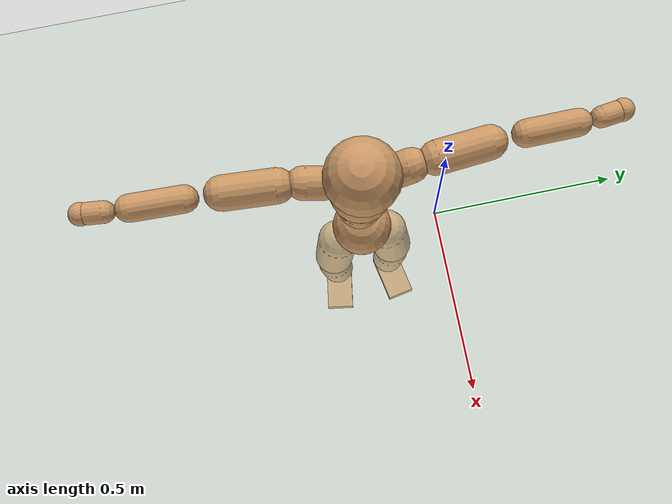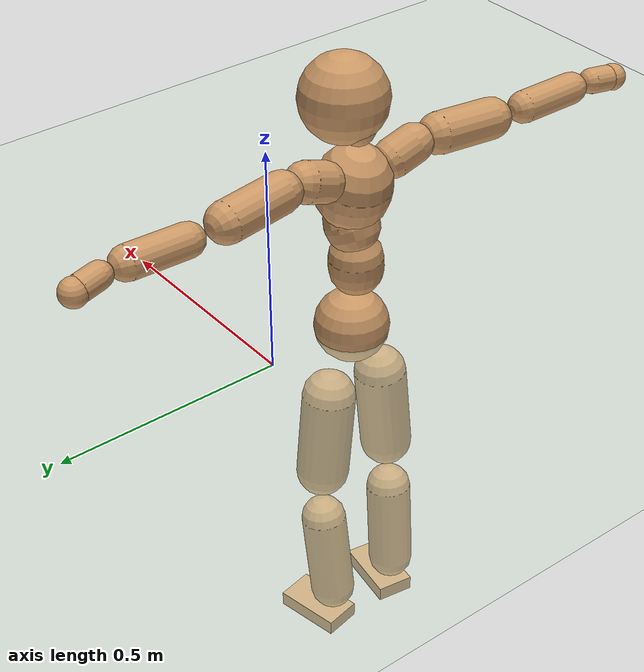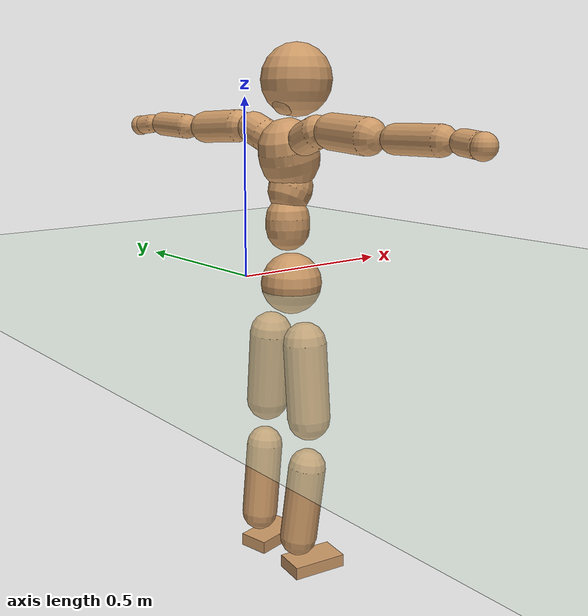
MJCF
<mujoco model="humanoid">
  <compiler coordinate="local"/>
  <default>
    <joint damping="0.0" armature="0.01" stiffness="0.0" limited="true"/>
    <geom conaffinity="1" condim="3" contype="7" margin="0.001" rgba="0.8 0.6 .4 1"/>
  </default>
  <asset>
    <texture type="skybox" builtin="gradient" rgb1=".4 .5 .6" rgb2="0 0 0" width="100" height="100"/>
    <texture builtin="flat" height="1278" mark="cross" markrgb="1 1 1" name="texgeom" random="0.01" rgb1="0.8 0.6 0.4" rgb2="0.8 0.6 0.4" type="cube" width="127"/>
    <texture builtin="checker" height="100" name="texplane" rgb1="0 0 0" rgb2="0.8 0.8 0.8" type="2d" width="100"/>
    <material name="MatPlane" reflectance="0.5" shininess="1" specular="1" texrepeat="60 60" texture="texplane"/>
    <material name="geom" texture="texgeom" texuniform="true"/>
  </asset>
  <worldbody>
    <light cutoff="100" diffuse="1 1 1" dir="-0 0 -1.3" directional="true" exponent="1" pos="0 0 1.3" specular=".1 .1 .1"/>
    <geom conaffinity="1" condim="3" name="floor" pos="0 0 0" rgba="0.8 0.9 0.8 1" size="100 100 .2" type="plane" material="MatPlane"/>
    <body name="Pelvis" pos="-0.0017 -0.2062 0.0162">
      <freejoint name="Pelvis"/>
      <geom type="sphere" contype="1" conaffinity="1" density="500" size="0.0818" pos="0.0000 0.0000 0.0000" name="Pelvis"/>
      <body name="L_Hip" pos="-0.0136 0.0661 -0.0835">
        <joint name="L_Hip_x" type="hinge" pos="0 0 0" axis="1 0 0" stiffness="800" damping="80" armature="0.02" range="-180.0000 180.0000"/>
        <joint name="L_Hip_y" type="hinge" pos="0 0 0" axis="0 1 0" stiffness="800" damping="80" armature="0.02" range="-180.0000 180.0000"/>
        <joint name="L_Hip_z" type="hinge" pos="0 0 0" axis="0 0 1" stiffness="800" damping="80" armature="0.02" range="-180.0000 180.0000"/>
        <geom type="capsule" contype="1" conaffinity="1" density="500" fromto="0.0005 0.0061 -0.0670 0.0021 0.0243 -0.2681" size="0.0584" name="L_Hip"/>
        <body name="L_Knee" pos="0.0026 0.0304 -0.3351">
          <joint name="L_Knee_x" type="hinge" pos="0 0 0" axis="1 0 0" stiffness="800" damping="80" armature="0.02" range="-180.0000 180.0000"/>
          <joint name="L_Knee_y" type="hinge" pos="0 0 0" axis="0 1 0" stiffness="800" damping="80" armature="0.02" range="-180.0000 180.0000"/>
          <joint name="L_Knee_z" type="hinge" pos="0 0 0" axis="0 0 1" stiffness="800" damping="80" armature="0.02" range="-180.0000 180.0000"/>
          <geom type="capsule" contype="1" conaffinity="1" density="500" fromto="-0.0078 -0.0021 -0.0682 -0.0313 -0.0085 -0.2727" size="0.0504" name="L_Knee"/>
          <body name="L_Ankle" pos="-0.0391 -0.0107 -0.3408">
            <joint name="L_Ankle_x" type="hinge" pos="0 0 0" axis="1 0 0" stiffness="800" damping="80" armature="0.02" range="-180.0000 180.0000"/>
            <joint name="L_Ankle_y" type="hinge" pos="0 0 0" axis="0 1 0" stiffness="800" damping="80" armature="0.02" range="-180.0000 180.0000"/>
            <joint name="L_Ankle_z" type="hinge" pos="0 0 0" axis="0 0 1" stiffness="800" damping="80" armature="0.02" range="-180.0000 180.0000"/>
            <geom type="box" contype="1" conaffinity="1" density="500" pos="0.0532 0.0104 -0.0240" size="0.0765 0.0422 0.0177" quat="0.9953 0.0000 0.0000 0.0968" name="L_Ankle"/>
            <body name="L_Toe" pos="0.1064 0.0209 -0.0481">
              <joint name="L_Toe_x" type="hinge" pos="0 0 0" axis="1 0 0" stiffness="500" damping="50" armature="0.02" range="-180.0000 180.0000"/>
              <joint name="L_Toe_y" type="hinge" pos="0 0 0" axis="0 1 0" stiffness="500" damping="50" armature="0.02" range="-180.0000 180.0000"/>
              <joint name="L_Toe_z" type="hinge" pos="0 0 0" axis="0 0 1" stiffness="500" damping="50" armature="0.02" range="-180.0000 180.0000"/>
              <geom type="box" contype="1" conaffinity="1" density="500" pos="0.0000 0.0000 0.0244" size="0.0008 0.0021 0.0009" quat="0.9946 0.0000 0.0000 0.1039" name="L_Toe"/>
            </body>
          </body>
        </body>
      </body>
      <body name="R_Hip" pos="-0.0111 -0.0642 -0.0817">
        <joint name="R_Hip_x" type="hinge" pos="0 0 0" axis="1 0 0" stiffness="800" damping="80" armature="0.02" range="-180.0000 180.0000"/>
        <joint name="R_Hip_y" type="hinge" pos="0 0 0" axis="0 1 0" stiffness="800" damping="80" armature="0.02" range="-180.0000 180.0000"/>
        <joint name="R_Hip_z" type="hinge" pos="0 0 0" axis="0 0 1" stiffness="800" damping="80" armature="0.02" range="-180.0000 180.0000"/>
        <geom type="capsule" contype="1" conaffinity="1" density="500" fromto="-0.0002 -0.0068 -0.0687 -0.0007 -0.0270 -0.2749" size="0.0578" name="R_Hip"/>
        <body name="R_Knee" pos="-0.0009 -0.0338 -0.3437">
          <joint name="R_Knee_x" type="hinge" pos="0 0 0" axis="1 0 0" stiffness="800" damping="80" armature="0.02" range="-180.0000 180.0000"/>
          <joint name="R_Knee_y" type="hinge" pos="0 0 0" axis="0 1 0" stiffness="800" damping="80" armature="0.02" range="-180.0000 180.0000"/>
          <joint name="R_Knee_z" type="hinge" pos="0 0 0" axis="0 0 1" stiffness="800" damping="80" armature="0.02" range="-180.0000 180.0000"/>
          <geom type="capsule" contype="1" conaffinity="1" density="500" fromto="-0.0075 0.0026 -0.0681 -0.0299 0.0105 -0.2723" size="0.0507" name="R_Knee"/>
          <body name="R_Ankle" pos="-0.0373 0.0131 -0.3403">
            <joint name="R_Ankle_x" type="hinge" pos="0 0 0" axis="1 0 0" stiffness="800" damping="80" armature="0.02" range="-180.0000 180.0000"/>
            <joint name="R_Ankle_y" type="hinge" pos="0 0 0" axis="0 1 0" stiffness="800" damping="80" armature="0.02" range="-180.0000 180.0000"/>
            <joint name="R_Ankle_z" type="hinge" pos="0 0 0" axis="0 0 1" stiffness="800" damping="80" armature="0.02" range="-180.0000 180.0000"/>
            <geom type="box" contype="1" conaffinity="1" density="500" pos="0.0545 -0.0084 -0.0207" size="0.0766 0.0425 0.0175" quat="0.9971 0.0000 0.0000 -0.0762" name="R_Ankle"/>
            <body name="R_Toe" pos="0.109 -0.0168 -0.0414">
              <joint name="R_Toe_x" type="hinge" pos="0 0 0" axis="1 0 0" stiffness="500" damping="50" armature="0.02" range="-180.0000 180.0000"/>
              <joint name="R_Toe_y" type="hinge" pos="0 0 0" axis="0 1 0" stiffness="500" damping="50" armature="0.02" range="-180.0000 180.0000"/>
              <joint name="R_Toe_z" type="hinge" pos="0 0 0" axis="0 0 1" stiffness="500" damping="50" armature="0.02" range="-180.0000 180.0000"/>
              <geom type="box" contype="1" conaffinity="1" density="500" pos="0.0000 0.0000 0.0226" size="0.0008 0.0021 0.001" quat="0.9978 0.0000 0.0000 -0.0661" name="R_Toe"/>
            </body>
          </body>
        </body>
      </body>
      <body name="Torso" pos="-0.0134 -0.0024 0.0953">
        <joint name="Torso_x" type="hinge" pos="0 0 0" axis="1 0 0" stiffness="1000" damping="100" armature="0.02" range="-180.0000 180.0000"/>
        <joint name="Torso_y" type="hinge" pos="0 0 0" axis="0 1 0" stiffness="1000" damping="100" armature="0.02" range="-180.0000 180.0000"/>
        <joint name="Torso_z" type="hinge" pos="0 0 0" axis="0 0 1" stiffness="1000" damping="100" armature="0.02" range="-180.0000 180.0000"/>
        <geom type="capsule" contype="1" conaffinity="1" density="500" fromto="-0.0002 0.0025 0.0798 -0.0002 0.0016 0.0532" size="0.0582" name="Torso"/>
        <body name="Spine" pos="-0.0004 0.0041 0.133">
          <joint name="Spine_x" type="hinge" pos="0 0 0" axis="1 0 0" stiffness="1000" damping="100" armature="0.02" range="-180.0000 180.0000"/>
          <joint name="Spine_y" type="hinge" pos="0 0 0" axis="0 1 0" stiffness="1000" damping="100" armature="0.02" range="-180.0000 180.0000"/>
          <joint name="Spine_z" type="hinge" pos="0 0 0" axis="0 0 1" stiffness="1000" damping="100" armature="0.02" range="-180.0000 180.0000"/>
          <geom type="capsule" contype="1" conaffinity="1" density="500" fromto="0.0135 0.0011 0.0282 0.0090 0.0007 0.0188" size="0.0584" name="Spine"/>
          <body name="Chest" pos="0.0224 0.0018 0.047">
            <joint name="Chest_x" type="hinge" pos="0 0 0" axis="1 0 0" stiffness="1000" damping="100" armature="0.02" range="-180.0000 180.0000"/>
            <joint name="Chest_y" type="hinge" pos="0 0 0" axis="0 1 0" stiffness="1000" damping="100" armature="0.02" range="-180.0000 180.0000"/>
            <joint name="Chest_z" type="hinge" pos="0 0 0" axis="0 0 1" stiffness="1000" damping="100" armature="0.02" range="-180.0000 180.0000"/>
            <geom type="capsule" contype="1" conaffinity="1" density="500" fromto="-0.0199 -0.0010 0.0789 -0.0133 -0.0007 0.0526" size="0.0794" name="Chest"/>
            <body name="Neck" pos="-0.0382 -0.0029 0.1877">
              <joint name="Neck_x" type="hinge" pos="0 0 0" axis="1 0 0" stiffness="500" damping="50" armature="0.02" range="-180.0000 180.0000"/>
              <joint name="Neck_y" type="hinge" pos="0 0 0" axis="0 1 0" stiffness="500" damping="50" armature="0.02" range="-180.0000 180.0000"/>
              <joint name="Neck_z" type="hinge" pos="0 0 0" axis="0 0 1" stiffness="500" damping="50" armature="0.02" range="-180.0000 180.0000"/>
              <geom type="capsule" contype="1" conaffinity="1" density="500" fromto="0.0096 0.0011 0.0128 0.0384 0.0044 0.0511" size="0.0368" name="Neck"/>
              <body name="Head" pos="0.048 0.0055 0.0639">
                <joint name="Head_x" type="hinge" pos="0 0 0" axis="1 0 0" stiffness="500" damping="50" armature="0.02" range="-180.0000 180.0000"/>
                <joint name="Head_y" type="hinge" pos="0 0 0" axis="0 1 0" stiffness="500" damping="50" armature="0.02" range="-180.0000 180.0000"/>
                <joint name="Head_z" type="hinge" pos="0 0 0" axis="0 0 1" stiffness="500" damping="50" armature="0.02" range="-180.0000 180.0000"/>
                <geom type="sphere" contype="1" conaffinity="1" density="500" size="0.0929" pos="0.0000 0.0000 0.0000" name="Head"/>
              </body>
            </body>
            <body name="L_Thorax" pos="-0.028 0.0662 0.1046">
              <joint name="L_Thorax_x" type="hinge" pos="0 0 0" axis="1 0 0" stiffness="500" damping="50" armature="0.02" range="-180.0000 180.0000"/>
              <joint name="L_Thorax_y" type="hinge" pos="0 0 0" axis="0 1 0" stiffness="500" damping="50" armature="0.02" range="-180.0000 180.0000"/>
              <joint name="L_Thorax_z" type="hinge" pos="0 0 0" axis="0 0 1" stiffness="500" damping="50" armature="0.02" range="-180.0000 180.0000"/>
              <geom type="capsule" contype="1" conaffinity="1" density="500" fromto="-0.0009 0.0159 0.0059 -0.0034 0.0635 0.0237" size="0.0433" name="L_Thorax"/>
              <body name="L_Shoulder" pos="-0.0043 0.0793 0.0296">
                <joint name="L_Shoulder_x" type="hinge" pos="0 0 0" axis="1 0 0" stiffness="500" damping="50" armature="0.02" range="-720.0000 720.0000"/>
                <joint name="L_Shoulder_y" type="hinge" pos="0 0 0" axis="0 1 0" stiffness="500" damping="50" armature="0.02" range="-720.0000 720.0000"/>
                <joint name="L_Shoulder_z" type="hinge" pos="0 0 0" axis="0 0 1" stiffness="500" damping="50" armature="0.02" range="-720.0000 720.0000"/>
                <geom type="capsule" contype="1" conaffinity="1" density="500" fromto="-0.0047 0.0454 -0.0023 -0.0189 0.1816 -0.0094" size="0.0434" name="L_Shoulder"/>
                <body name="L_Elbow" pos="-0.0237 0.227 -0.0117">
                  <joint name="L_Elbow_x" type="hinge" pos="0 0 0" axis="1 0 0" stiffness="500" damping="50" armature="0.02" range="-720.0000 720.0000"/>
                  <joint name="L_Elbow_y" type="hinge" pos="0 0 0" axis="0 1 0" stiffness="500" damping="50" armature="0.02" range="-720.0000 720.0000"/>
                  <joint name="L_Elbow_z" type="hinge" pos="0 0 0" axis="0 0 1" stiffness="500" damping="50" armature="0.02" range="-720.0000 720.0000"/>
                  <geom type="capsule" contype="1" conaffinity="1" density="500" fromto="-0.0002 0.0436 0.0013 -0.0006 0.1743 0.0052" size="0.0347" name="L_Elbow"/>
                  <body name="L_Wrist" pos="-0.0008 0.2178 0.0064">
                    <joint name="L_Wrist_x" type="hinge" pos="0 0 0" axis="1 0 0" stiffness="300" damping="30" armature="0.02" range="-180.0000 180.0000"/>
                    <joint name="L_Wrist_y" type="hinge" pos="0 0 0" axis="0 1 0" stiffness="300" damping="30" armature="0.02" range="-180.0000 180.0000"/>
                    <joint name="L_Wrist_z" type="hinge" pos="0 0 0" axis="0 0 1" stiffness="300" damping="30" armature="0.02" range="-180.0000 180.0000"/>
                    <geom type="capsule" contype="1" conaffinity="1" density="500" fromto="-0.0024 0.0144 -0.0018 -0.0096 0.0578 -0.0072" size="0.0273" name="L_Wrist"/>
                    <body name="L_Hand" pos="-0.012 0.0722 -0.009">
                      <joint name="L_Hand_x" type="hinge" pos="0 0 0" axis="1 0 0" stiffness="300" damping="30" armature="0.02" range="-180.0000 180.0000"/>
                      <joint name="L_Hand_y" type="hinge" pos="0 0 0" axis="0 1 0" stiffness="300" damping="30" armature="0.02" range="-180.0000 180.0000"/>
                      <joint name="L_Hand_z" type="hinge" pos="0 0 0" axis="0 0 1" stiffness="300" damping="30" armature="0.02" range="-180.0000 180.0000"/>
                      <geom type="sphere" contype="1" conaffinity="1" density="500" size="0.0292" pos="0.0000 0.0000 0.0000" name="L_Hand"/>
                    </body>
                  </body>
                </body>
              </body>
            </body>
            <body name="R_Thorax" pos="-0.0335 -0.0683 0.1022">
              <joint name="R_Thorax_x" type="hinge" pos="0 0 0" axis="1 0 0" stiffness="500" damping="50" armature="0.02" range="-180.0000 180.0000"/>
              <joint name="R_Thorax_y" type="hinge" pos="0 0 0" axis="0 1 0" stiffness="500" damping="50" armature="0.02" range="-180.0000 180.0000"/>
              <joint name="R_Thorax_z" type="hinge" pos="0 0 0" axis="0 0 1" stiffness="500" damping="50" armature="0.02" range="-180.0000 180.0000"/>
              <geom type="capsule" contype="1" conaffinity="1" density="500" fromto="-0.0017 -0.0167 0.0060 -0.0067 -0.0669 0.0242" size="0.0421" name="R_Thorax"/>
              <body name="R_Shoulder" pos="-0.0084 -0.0836 0.0302">
                <joint name="R_Shoulder_x" type="hinge" pos="0 0 0" axis="1 0 0" stiffness="500" damping="50" armature="0.02" range="-720.0000 720.0000"/>
                <joint name="R_Shoulder_y" type="hinge" pos="0 0 0" axis="0 1 0" stiffness="500" damping="50" armature="0.02" range="-720.0000 720.0000"/>
                <joint name="R_Shoulder_z" type="hinge" pos="0 0 0" axis="0 0 1" stiffness="500" damping="50" armature="0.02" range="-720.0000 720.0000"/>
                <geom type="capsule" contype="1" conaffinity="1" density="500" fromto="-0.0033 -0.0444 -0.0021 -0.0133 -0.1777 -0.0085" size="0.0441" name="R_Shoulder"/>
                <body name="R_Elbow" pos="-0.0166 -0.2221 -0.0106">
                  <joint name="R_Elbow_x" type="hinge" pos="0 0 0" axis="1 0 0" stiffness="500" damping="50" armature="0.02" range="-720.0000 720.0000"/>
                  <joint name="R_Elbow_y" type="hinge" pos="0 0 0" axis="0 1 0" stiffness="500" damping="50" armature="0.02" range="-720.0000 720.0000"/>
                  <joint name="R_Elbow_z" type="hinge" pos="0 0 0" axis="0 0 1" stiffness="500" damping="50" armature="0.02" range="-720.0000 720.0000"/>
                  <geom type="capsule" contype="1" conaffinity="1" density="500" fromto="-0.0011 -0.0446 0.0007 -0.0042 -0.1784 0.0030" size="0.0344" name="R_Elbow"/>
                  <body name="R_Wrist" pos="-0.0053 -0.2231 0.0037">
                    <joint name="R_Wrist_x" type="hinge" pos="0 0 0" axis="1 0 0" stiffness="300" damping="30" armature="0.02" range="-180.0000 180.0000"/>
                    <joint name="R_Wrist_y" type="hinge" pos="0 0 0" axis="0 1 0" stiffness="300" damping="30" armature="0.02" range="-180.0000 180.0000"/>
                    <joint name="R_Wrist_z" type="hinge" pos="0 0 0" axis="0 0 1" stiffness="300" damping="30" armature="0.02" range="-180.0000 180.0000"/>
                    <geom type="capsule" contype="1" conaffinity="1" density="500" fromto="-0.0018 -0.0144 -0.0013 -0.0074 -0.0577 -0.0052" size="0.0277" name="R_Wrist"/>
                    <body name="R_Hand" pos="-0.0092 -0.0722 -0.0066">
                      <joint name="R_Hand_x" type="hinge" pos="0 0 0" axis="1 0 0" stiffness="300" damping="30" armature="0.02" range="-180.0000 180.0000"/>
                      <joint name="R_Hand_y" type="hinge" pos="0 0 0" axis="0 1 0" stiffness="300" damping="30" armature="0.02" range="-180.0000 180.0000"/>
                      <joint name="R_Hand_z" type="hinge" pos="0 0 0" axis="0 0 1" stiffness="300" damping="30" armature="0.02" range="-180.0000 180.0000"/>
                      <geom type="sphere" contype="1" conaffinity="1" density="500" size="0.0291" pos="0.0000 0.0000 0.0000" name="R_Hand"/>
                    </body>
                  </body>
                </body>
              </body>
            </body>
          </body>
        </body>
      </body>
    </body>
  </worldbody>
  <actuator>
    <motor name="L_Hip_x" joint="L_Hip_x" gear="500"/>
    <motor name="L_Hip_y" joint="L_Hip_y" gear="500"/>
    <motor name="L_Hip_z" joint="L_Hip_z" gear="500"/>
    <motor name="L_Knee_x" joint="L_Knee_x" gear="500"/>
    <motor name="L_Knee_y" joint="L_Knee_y" gear="500"/>
    <motor name="L_Knee_z" joint="L_Knee_z" gear="500"/>
    <motor name="L_Ankle_x" joint="L_Ankle_x" gear="500"/>
    <motor name="L_Ankle_y" joint="L_Ankle_y" gear="500"/>
    <motor name="L_Ankle_z" joint="L_Ankle_z" gear="500"/>
    <motor name="L_Toe_x" joint="L_Toe_x" gear="500"/>
    <motor name="L_Toe_y" joint="L_Toe_y" gear="500"/>
    <motor name="L_Toe_z" joint="L_Toe_z" gear="500"/>
    <motor name="R_Hip_x" joint="R_Hip_x" gear="500"/>
    <motor name="R_Hip_y" joint="R_Hip_y" gear="500"/>
    <motor name="R_Hip_z" joint="R_Hip_z" gear="500"/>
    <motor name="R_Knee_x" joint="R_Knee_x" gear="500"/>
    <motor name="R_Knee_y" joint="R_Knee_y" gear="500"/>
    <motor name="R_Knee_z" joint="R_Knee_z" gear="500"/>
    <motor name="R_Ankle_x" joint="R_Ankle_x" gear="500"/>
    <motor name="R_Ankle_y" joint="R_Ankle_y" gear="500"/>
    <motor name="R_Ankle_z" joint="R_Ankle_z" gear="500"/>
    <motor name="R_Toe_x" joint="R_Toe_x" gear="500"/>
    <motor name="R_Toe_y" joint="R_Toe_y" gear="500"/>
    <motor name="R_Toe_z" joint="R_Toe_z" gear="500"/>
    <motor name="Torso_x" joint="Torso_x" gear="500"/>
    <motor name="Torso_y" joint="Torso_y" gear="500"/>
    <motor name="Torso_z" joint="Torso_z" gear="500"/>
    <motor name="Spine_x" joint="Spine_x" gear="500"/>
    <motor name="Spine_y" joint="Spine_y" gear="500"/>
    <motor name="Spine_z" joint="Spine_z" gear="500"/>
    <motor name="Chest_x" joint="Chest_x" gear="500"/>
    <motor name="Chest_y" joint="Chest_y" gear="500"/>
    <motor name="Chest_z" joint="Chest_z" gear="500"/>
    <motor name="Neck_x" joint="Neck_x" gear="500"/>
    <motor name="Neck_y" joint="Neck_y" gear="500"/>
    <motor name="Neck_z" joint="Neck_z" gear="500"/>
    <motor name="Head_x" joint="Head_x" gear="500"/>
    <motor name="Head_y" joint="Head_y" gear="500"/>
    <motor name="Head_z" joint="Head_z" gear="500"/>
    <motor name="L_Thorax_x" joint="L_Thorax_x" gear="500"/>
    <motor name="L_Thorax_y" joint="L_Thorax_y" gear="500"/>
    <motor name="L_Thorax_z" joint="L_Thorax_z" gear="500"/>
    <motor name="L_Shoulder_x" joint="L_Shoulder_x" gear="500"/>
    <motor name="L_Shoulder_y" joint="L_Shoulder_y" gear="500"/>
    <motor name="L_Shoulder_z" joint="L_Shoulder_z" gear="500"/>
    <motor name="L_Elbow_x" joint="L_Elbow_x" gear="500"/>
    <motor name="L_Elbow_y" joint="L_Elbow_y" gear="500"/>
    <motor name="L_Elbow_z" joint="L_Elbow_z" gear="500"/>
    <motor name="L_Wrist_x" joint="L_Wrist_x" gear="500"/>
    <motor name="L_Wrist_y" joint="L_Wrist_y" gear="500"/>
    <motor name="L_Wrist_z" joint="L_Wrist_z" gear="500"/>
    <motor name="L_Hand_x" joint="L_Hand_x" gear="500"/>
    <motor name="L_Hand_y" joint="L_Hand_y" gear="500"/>
    <motor name="L_Hand_z" joint="L_Hand_z" gear="500"/>
    <motor name="R_Thorax_x" joint="R_Thorax_x" gear="500"/>
    <motor name="R_Thorax_y" joint="R_Thorax_y" gear="500"/>
    <motor name="R_Thorax_z" joint="R_Thorax_z" gear="500"/>
    <motor name="R_Shoulder_x" joint="R_Shoulder_x" gear="500"/>
    <motor name="R_Shoulder_y" joint="R_Shoulder_y" gear="500"/>
    <motor name="R_Shoulder_z" joint="R_Shoulder_z" gear="500"/>
    <motor name="R_Elbow_x" joint="R_Elbow_x" gear="500"/>
    <motor name="R_Elbow_y" joint="R_Elbow_y" gear="500"/>
    <motor name="R_Elbow_z" joint="R_Elbow_z" gear="500"/>
    <motor name="R_Wrist_x" joint="R_Wrist_x" gear="500"/>
    <motor name="R_Wrist_y" joint="R_Wrist_y" gear="500"/>
    <motor name="R_Wrist_z" joint="R_Wrist_z" gear="500"/>
    <motor name="R_Hand_x" joint="R_Hand_x" gear="500"/>
    <motor name="R_Hand_y" joint="R_Hand_y" gear="500"/>
    <motor name="R_Hand_z" joint="R_Hand_z" gear="500"/>
  </actuator>
  <contact>
    <exclude body1="Torso" body2="Chest"/>
    <exclude body1="Head" body2="Chest"/>
    <exclude body1="R_Knee" body2="R_Toe"/>
    <exclude body1="R_Knee" body2="L_Ankle"/>
    <exclude body1="R_Knee" body2="L_Toe"/>
    <exclude body1="L_Knee" body2="L_Toe"/>
    <exclude body1="L_Knee" body2="R_Ankle"/>
    <exclude body1="L_Knee" body2="R_Toe"/>
    <exclude body1="L_Shoulder" body2="Chest"/>
    <exclude body1="R_Shoulder" body2="Chest"/>
  </contact>
  <sensor/>
  <size njmax="700" nconmax="700"/>
</mujoco>
